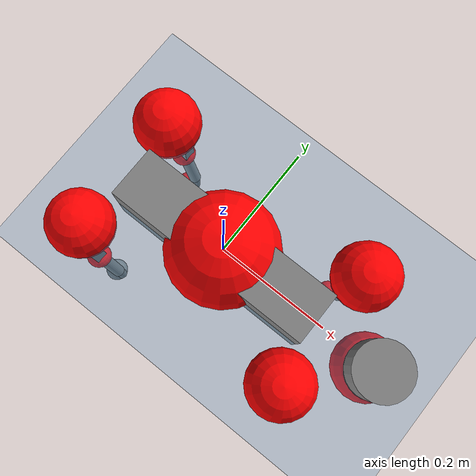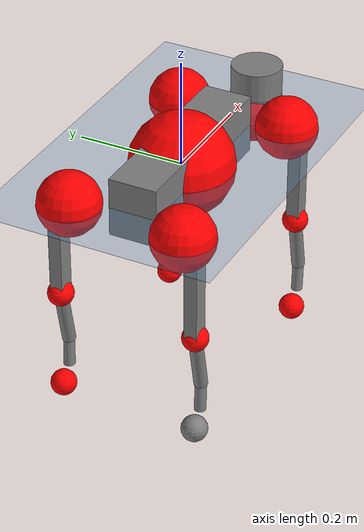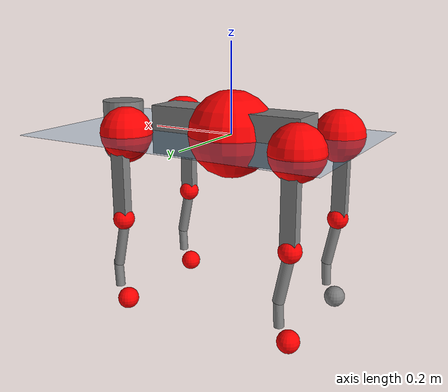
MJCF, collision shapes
<mujoco model="go2">
  <compiler angle="radian" assetdir="assets" balanceinertia="true" inertiafromgeom="false"/>

  <option timestep="0.005" density="1.2" viscosity="2e-05"/>

  <size nkey="1"/>

  <visual>
    <quality shadowsize="8192"/>
    <map shadowclip="0.5"/>
  </visual>

  <default>
    <default class="/">
      <geom contype="0" conaffinity="0" group="1" solref="-1000 -80"/>
      <site size="0.01 0.005 0.005" group="5"/>
      <general forcelimited="true" biastype="affine" gainprm="20" biasprm="0 -20 -0.5"/>
      <default class="go2">
        <joint armature="0.01" damping="0.01" frictionloss="0.2"/>
        <geom condim="1" margin="0.001"/>
        <default class="visual">
          <geom type="mesh" group="2"/>
        </default>
        <default class="collision">
          <geom group="3"/>
          <default class="foot">
            <geom size="0.022 0 0" condim="6" priority="1" friction="0.8 0.02 0.01" solimp="0.015 1 0.022"/>
          </default>
        </default>
        <default class="reward_collision_sphere">
          <geom group="5" rgba="1 0 0 1"/>
        </default>
      </default>
    </default>
  </default>

  <asset>
    <texture type="skybox" colorspace="auto" name="//unnamed_texture_0" builtin="gradient" rgb1="0.95 0.95 0.95" rgb2="0.95 0.95 0.95" width="100" height="600"/>
    <texture type="2d" colorspace="auto" name="texplane" builtin="checker" rgb1="0.345 0.575 0.748" rgb2="0.345 0.575 0.748" markrgb="1 1 1" width="512" height="512"/>
    <material name="MatPlane" class="/" texture="texplane" texuniform="true" texrepeat="2 2" specular="0.9"/>
    <material name="metal" class="/" rgba="0.9 0.95 0.95 1"/>
    <material name="black" class="/" rgba="0 0 0 1"/>
    <material name="white" class="/"/>
    <material name="gray" class="/" rgba="0.671705 0.692426 0.77427 1"/>
    <mesh name="base_0" class="/" file="base_0.obj"/>
    <mesh name="base_1" class="/" file="base_1.obj"/>
    <mesh name="base_2" class="/" file="base_2.obj"/>
    <mesh name="base_3" class="/" file="base_3.obj"/>
    <mesh name="base_4" class="/" file="base_4.obj"/>
    <mesh name="hip_0" class="/" file="hip_0.obj"/>
    <mesh name="hip_1" class="/" file="hip_1.obj"/>
    <mesh name="thigh_0" class="/" file="thigh_0.obj"/>
    <mesh name="thigh_1" class="/" file="thigh_1.obj"/>
    <mesh name="thigh_mirror_0" class="/" file="thigh_mirror_0.obj"/>
    <mesh name="thigh_mirror_1" class="/" file="thigh_mirror_1.obj"/>
    <mesh name="calf_0" class="/" file="calf_0.obj"/>
    <mesh name="calf_1" class="/" file="calf_1.obj"/>
    <mesh name="calf_mirror_0" class="/" file="calf_mirror_0.obj"/>
    <mesh name="calf_mirror_1" class="/" file="calf_mirror_1.obj"/>
    <mesh name="foot" class="/" file="foot.obj"/>
  </asset>

  <worldbody>
    <geom name="floor" class="/" size="100 100 0.125" type="plane" group="0" material="MatPlane"/>
    <light name="toplight_shadow" class="/" pos="0 0 5" dir="0.0990148 0.0990148 -0.990148" type="directional" ambient="0.04 0.04 0.04" diffuse="0.55 0.55 0.55" specular="0.12 0.12 0.12"/>
    <light name="toplight_fill" class="/" pos="0 0 5" dir="0.0990148 0.0990148 -0.990148" type="directional" castshadow="false" ambient="0.04 0.04 0.04" diffuse="0.3 0.3 0.3" specular="0.08 0.08 0.08"/>
    <body name="trunk" childclass="go2" pos="-0.000215231 -0.00165048 0.000838023" quat="1 0.000815506 7.19346e-05 -0.000188256">
      <inertial pos="0.0215448 -0.00264045 -0.0029816" quat="0.000213192 0.716383 -0.0021435 0.697704" mass="6.26142" diaginertia="0.134333 0.0669202 0.0157216"/>
      <joint name="//unnamed_joint_0" type="free" armature="0" damping="0" frictionloss="0"/>
      <geom name="//unnamed_geom_1" class="visual" material="black" mesh="base_0"/>
      <geom name="//unnamed_geom_2" class="visual" material="black" mesh="base_1"/>
      <geom name="//unnamed_geom_3" class="visual" material="black" mesh="base_2"/>
      <geom name="//unnamed_geom_4" class="visual" material="white" mesh="base_3"/>
      <geom name="//unnamed_geom_5" class="visual" material="gray" mesh="base_4"/>
      <geom name="trunk_1" class="collision" size="0.182477 0.0453525 0.0552961" type="box"/>
      <geom name="trunk_2" class="collision" size="0.0485054 0.0436548" pos="0.302354 0 0.00916466" type="cylinder"/>
      <geom name="trunk_3" class="collision" size="0.0455951" pos="0.310841 0 -0.054988"/>
      <geom name="//unnamed_geom_9" class="reward_collision_sphere" size="0.0970108"/>
      <geom name="//unnamed_geom_10" class="reward_collision_sphere" size="0.0582065" pos="0.297049 0 -0.041241"/>
      <site name="imu" pos="-0.0264388 0.00218762 0.0410175" size="0.00970108"/>
      <camera name="track" pos="0 -1.86593 0" quat="0.707107 0.707107 0 0" mode="trackcom"/>
      <camera name="ego_camera" pos="0.330998 0 0.041241" quat="-0.5 -0.5 0.5 0.5"/>
      <body name="FL_hip" pos="0.205316 0.044527 0.000357909" quat="1 2.66989e-05 5.06722e-05 4.96927e-05">
        <inertial pos="-0.00543598 -0.000325289 0.000172372" quat="0.497929 0.488751 0.511617 0.501436" mass="0.614526" diaginertia="0.00116737 0.000414649 0.000304243"/>
        <joint name="FL_hip_joint" pos="0 0 0" axis="0.999971 0.00742702 0.00148353" stiffness="0.0156796" range="-1.06208 1.06808" armature="0.0093382" damping="0.00409685" frictionloss="0.195415"/>
        <geom name="//unnamed_geom_11" class="visual" material="metal" mesh="hip_0"/>
        <geom name="//unnamed_geom_12" class="visual" material="gray" mesh="hip_1"/>
        <geom name="//unnamed_geom_13" class="collision" size="0.044625 0.0194022" pos="0 0.0746373 0" quat="0.707107 0.707107 0 0" type="cylinder"/>
        <geom name="//unnamed_geom_14" class="reward_collision_sphere" size="0.0582065" pos="0 0.0653076 0"/>
        <body name="FL_thigh" pos="0.00118654 0.0895096 9.208e-05" quat="0.999999 -0.0013625 8.97708e-05 -0.000196535">
          <inertial pos="-0.0047729 -0.0180703 -0.0296071" quat="0.830086 0.0853911 -0.0198143 0.550703" mass="1.05922" diaginertia="0.00772107 0.00426147 0.000568406"/>
          <joint name="FL_thigh_joint" pos="0 0 0" axis="-0.0087815 0.999905 0.0106697" stiffness="0.00463158" range="-1.60297 3.43726" armature="0.0109772" damping="0.00226923" frictionloss="0.185074"/>
          <geom name="//unnamed_geom_15" class="visual" material="metal" mesh="thigh_0"/>
          <geom name="//unnamed_geom_16" class="visual" material="gray" mesh="thigh_1"/>
          <geom name="//unnamed_geom_17" class="collision" size="0.103316 0.0118838 0.0164918" pos="0 0 -0.0976037" quat="0.707107 0 0.707107 0" type="box"/>
          <body name="FL_calf" pos="-0.00125828 -0.00181193 -0.194346" quat="1 0.000105616 -3.92836e-05 -0.000263545">
            <inertial pos="0.00411702 -0.00177032 -0.13135" quat="0.712531 0.00140183 -0.00514747 0.701621" mass="0.214704" diaginertia="0.0019725 0.00105058 3.38066e-05"/>
            <joint name="FL_calf_joint" pos="0 0 0" axis="-0.00969027 0.999939 0.00538825" stiffness="0.0106137" range="-2.67159 -0.790031" armature="0.00925247" damping="0" frictionloss="0.187045"/>
            <geom name="//unnamed_geom_18" class="visual" material="gray" mesh="calf_0"/>
            <geom name="//unnamed_geom_19" class="visual" material="black" mesh="calf_1"/>
            <geom name="FL_calf0" class="collision" size="0.0116413 0.0582065" pos="0.00848712 0 -0.054988" quat="0.994493 0 -0.104807 0" type="cylinder"/>
            <geom name="//unnamed_geom_21" class="collision" size="0.0106712 0.0315285" pos="0.0212178 0 -0.135637" quat="0.999688 0 0.0249974 0" type="cylinder"/>
            <geom name="//unnamed_geom_22" class="visual" pos="0 0 -0.195207" quat="1 0 0 0" material="black" mesh="foot"/>
            <geom name="FL_foot" class="foot" size="0.0175243" pos="-0.00212178 0 -0.195207"/>
            <geom name="//unnamed_geom_24" class="reward_collision_sphere" size="0.0242527"/>
            <geom name="//unnamed_geom_25" class="reward_collision_sphere" size="0.0242527" pos="-0.00212178 0 -0.195207"/>
            <site name="FL_foot" class="foot" pos="-0.00212178 0 -0.195207" size="0.00970108"/>
          </body>
        </body>
      </body>
      <body name="FR_hip" pos="0.202807 -0.0434348 -0.00149772" quat="1 7.5647e-05 -0.000461575 -9.69102e-05">
        <inertial pos="-0.00530717 -0.00216675 0.000566724" quat="0.506436 0.495052 0.500459 0.497983" mass="0.624663" diaginertia="0.00116486 0.000420967 0.000309239"/>
        <joint name="FR_hip_joint" pos="0 0 0" axis="0.999989 -0.00466517 -0.000499852" range="-1.05918 1.10085" armature="0.00962152" damping="0.00742406" frictionloss="0.184825"/>
        <geom name="//unnamed_geom_26" class="visual" pos="0 1.4374e-10 6.16532e-09" quat="4.63268e-05 1 0 0" material="metal" mesh="hip_0"/>
        <geom name="//unnamed_geom_27" class="visual" pos="0 2.3302e-10 -1.52492e-08" quat="4.63268e-05 1 0 0" material="gray" mesh="hip_1"/>
        <geom name="//unnamed_geom_28" class="collision" size="0.044625 0.0194022" pos="0 -0.0746373 0" quat="0.707107 0.707107 0 0" type="cylinder"/>
        <geom name="//unnamed_geom_29" class="reward_collision_sphere" size="0.0582065" pos="0 -0.0653076 0"/>
        <body name="FR_thigh" pos="0.00088712 -0.0886988 0.000200159" quat="1 -8.25208e-07 -0.00016386 0.000351157">
          <inertial pos="-0.00309061 0.0195177 -0.0272156" quat="0.552292 -0.0204359 0.0820537 0.829351" mass="1.03879" diaginertia="0.0078248 0.00412849 0.00056801"/>
          <joint name="FR_thigh_joint" pos="0 0 0" axis="0.002923 -0.999978 0.00599461" stiffness="0.0116417" range="-3.50224 1.55557" armature="0.00851303" damping="0.0257774" frictionloss="0.181285"/>
          <geom name="//unnamed_geom_30" class="visual" material="metal" mesh="thigh_mirror_0"/>
          <geom name="//unnamed_geom_31" class="visual" material="gray" mesh="thigh_mirror_1"/>
          <geom name="//unnamed_geom_32" class="collision" size="0.103316 0.0118838 0.0164918" pos="0 0 -0.0976037" quat="0.707107 0 0.707107 0" type="box"/>
          <body name="FR_calf" pos="-9.5544e-05 0.000284818 -0.191833" quat="1 0.000111007 0.000387086 0.000353381">
            <inertial pos="0.00531475 0.00234795 -0.130244" quat="0.703682 -0.00437379 0.00200643 0.710498" mass="0.227407" diaginertia="0.00207781 0.00109401 3.49505e-05"/>
            <joint name="FR_calf_joint" pos="0 0 0" axis="0.00858725 -0.999959 0.00304186" range="0.818948 2.70267" armature="0.0100804" damping="0" frictionloss="0.198605"/>
            <geom name="//unnamed_geom_33" class="visual" material="gray" mesh="calf_mirror_0"/>
            <geom name="//unnamed_geom_34" class="visual" material="black" mesh="calf_mirror_1"/>
            <geom name="FR_calf0" class="collision" size="0.0126114 0.0582065" pos="0.0106089 0 -0.054988" quat="0.995004 0 -0.0998334 0" type="cylinder"/>
            <geom name="//unnamed_geom_36" class="collision" size="0.0106712 0.0315285" pos="0.0212178 0 -0.135637" quat="0.999688 0 0.0249974 0" type="cylinder"/>
            <geom name="//unnamed_geom_37" class="visual" pos="0 0 -0.195207" quat="1 0 0 0" material="black" mesh="foot"/>
            <geom name="FR_foot" class="foot" size="0.0200192" pos="-0.00212178 0 -0.195207"/>
            <geom name="//unnamed_geom_39" class="reward_collision_sphere" size="0.0242527"/>
            <geom name="//unnamed_geom_40" class="reward_collision_sphere" size="0.0242527" pos="-0.00212178 0 -0.195207"/>
            <site name="FR_foot" class="foot" pos="-0.00212178 0 -0.195207" size="0.00970108"/>
          </body>
        </body>
      </body>
      <body name="RL_hip" pos="-0.205985 0.0438393 0.00194252" quat="1 1.84419e-05 -6.685e-05 -2.11387e-06">
        <inertial pos="0.00473266 0.0030673 0.00157997" quat="0.5076 0.500729 0.492814 0.498745" mass="0.601159" diaginertia="0.00120792 0.000420516 0.000315388"/>
        <joint name="RL_hip_joint" pos="0 0 0" axis="-0.999898 0.0101984 0.00999332" stiffness="0.0126488" range="-0.997566 1.05412" armature="0.0102187" damping="0.0124967" frictionloss="0.215386"/>
        <geom name="//unnamed_geom_41" class="visual" pos="-1.25816e-09 0 -2.46629e-07" quat="4.63268e-05 0 1 0" material="metal" mesh="hip_0"/>
        <geom name="//unnamed_geom_42" class="visual" pos="-2.03963e-09 0 -2.18725e-07" quat="4.63268e-05 0 1 0" material="gray" mesh="hip_1"/>
        <geom name="//unnamed_geom_43" class="collision" size="0.044625 0.0194022" pos="0 0.0746373 0" quat="0.707107 0.707107 0 0" type="cylinder"/>
        <geom name="//unnamed_geom_44" class="reward_collision_sphere" size="0.0582065" pos="0 0.0653076 0"/>
        <body name="RL_thigh" pos="-0.000141606 0.0887235 0.00185555" quat="0.999999 -0.000802111 -0.00090367 -0.00067173">
          <inertial pos="-0.00411784 -0.0180945 -0.0303185" quat="0.823717 0.083124 -0.0221803 0.560437" mass="1.0142" diaginertia="0.00789514 0.00417125 0.000585606"/>
          <joint name="RL_thigh_joint" pos="0 0 0" axis="0.0017458 0.999943 -0.0105009" stiffness="0.00535167" range="-0.512971 4.52908" armature="0.0104785" damping="0.0211276" frictionloss="0.185175"/>
          <geom name="//unnamed_geom_45" class="visual" material="metal" mesh="thigh_0"/>
          <geom name="//unnamed_geom_46" class="visual" material="gray" mesh="thigh_1"/>
          <geom name="//unnamed_geom_47" class="collision" size="0.103316 0.0118838 0.0164918" pos="0 0 -0.0976037" quat="0.707107 0 0.707107 0" type="box"/>
          <body name="RL_calf" pos="-0.00145875 -0.000463432 -0.193228" quat="1 -0.000372147 5.4216e-05 0.000259188">
            <inertial pos="0.00721245 0.00201553 -0.129271" quat="0.71026 0.0025481 -0.00575592 0.703911" mass="0.220383" diaginertia="0.00193362 0.000997688 3.30396e-05"/>
            <joint name="RL_calf_joint" pos="0 0 0" axis="-0.0164458 0.999835 0.00771046" stiffness="0.012024" range="-2.66831 -0.836923" armature="0.0109939" damping="0.0064706" frictionloss="0.179877"/>
            <geom name="//unnamed_geom_48" class="visual" material="gray" mesh="calf_0"/>
            <geom name="//unnamed_geom_49" class="visual" material="black" mesh="calf_1"/>
            <geom name="RL_calf0" class="collision" size="0.0126114 0.0582065" pos="0.0106089 0 -0.054988" quat="0.995004 0 -0.0998334 0" type="cylinder"/>
            <geom name="//unnamed_geom_51" class="collision" size="0.0106712 0.0315285" pos="0.0212178 0 -0.135637" quat="0.999688 0 0.0249974 0" type="cylinder"/>
            <geom name="//unnamed_geom_52" class="visual" pos="0 0 -0.195207" quat="1 0 0 0" material="black" mesh="foot"/>
            <geom name="RL_foot" class="foot" size="0.0187609" pos="-0.00212178 0 -0.195207"/>
            <geom name="//unnamed_geom_54" class="reward_collision_sphere" size="0.0242527"/>
            <geom name="//unnamed_geom_55" class="reward_collision_sphere" size="0.0242527" pos="-0.00212178 0 -0.195207"/>
            <site name="RL_foot" class="foot" pos="-0.00212178 0 -0.195207" size="0.00970108"/>
          </body>
        </body>
      </body>
      <body name="RR_hip" pos="-0.207723 -0.044513 -0.00220439" quat="0.999999 -0.000953055 -0.000752592 -0.000333646">
        <inertial pos="0.0059361 -0.000959546 -0.000170214" quat="0.499329 0.497106 0.498159 0.505365" mass="0.61339" diaginertia="0.00117819 0.00041421 0.000318168"/>
        <joint name="RR_hip_joint" pos="0 0 0" axis="-0.999999 -0.000868345 -0.000823039" stiffness="0.00920242" range="-1.02684 1.08041" armature="0.0109995" damping="0.00827895" frictionloss="0.206449"/>
        <geom name="//unnamed_geom_56" class="visual" pos="1.25373e-09 1.4374e-10 -2.52794e-07" quat="2.14617e-09 4.63268e-05 4.63268e-05 -1" material="metal" mesh="hip_0"/>
        <geom name="//unnamed_geom_57" class="visual" pos="2.05059e-09 2.3302e-10 -2.03475e-07" quat="2.14617e-09 4.63268e-05 4.63268e-05 -1" material="gray" mesh="hip_1"/>
        <geom name="//unnamed_geom_58" class="collision" size="0.044625 0.0194022" pos="0 -0.0746373 0" quat="0.707107 0.707107 0 0" type="cylinder"/>
        <geom name="//unnamed_geom_59" class="reward_collision_sphere" size="0.0582065" pos="0 -0.0653076 0"/>
        <body name="RR_thigh" pos="-0.00114629 -0.0874717 -0.00148574" quat="1 0.000168885 0.000211606 0.000122614">
          <inertial pos="-0.00406466 0.0188015 -0.0306029" quat="0.55334 -0.0172012 0.0834538 0.828586" mass="1.02618" diaginertia="0.00791397 0.00412096 0.000549544"/>
          <joint name="RR_thigh_joint" pos="0 0 0" axis="-0.00133964 -0.999988 -0.00480777" stiffness="0.00920983" range="-4.52905 0.57696" armature="0.00840488" damping="0.0239421" frictionloss="0.191372"/>
          <geom name="//unnamed_geom_60" class="visual" material="metal" mesh="thigh_mirror_0"/>
          <geom name="//unnamed_geom_61" class="visual" material="gray" mesh="thigh_mirror_1"/>
          <geom name="//unnamed_geom_62" class="collision" size="0.103316 0.0118838 0.0164918" pos="0 0 -0.0976037" quat="0.707107 0 0.707107 0" type="box"/>
          <body name="RR_calf" pos="0.00284695 -0.000205651 -0.196425" quat="1 0.000154972 -4.54466e-05 0.000120348">
            <inertial pos="0.00570208 0.000285968 -0.129454" quat="0.703594 -0.0043506 0.00259458 0.710584" mass="0.225333" diaginertia="0.00198279 0.00104198 3.44576e-05"/>
            <joint name="RR_calf_joint" pos="0 0 0" axis="-0.00104915 -0.999986 -0.00518158" range="0.888923 2.7336" armature="0.00969029" damping="0.0153075" frictionloss="0.202257"/>
            <geom name="//unnamed_geom_63" class="visual" material="gray" mesh="calf_mirror_0"/>
            <geom name="//unnamed_geom_64" class="visual" material="black" mesh="calf_mirror_1"/>
            <geom name="RR_calf0" class="collision" size="0.0126114 0.0582065" pos="0.0106089 0 -0.054988" quat="0.995004 0 -0.0998334 0" type="cylinder"/>
            <geom name="//unnamed_geom_66" class="collision" size="0.0106712 0.0315285" pos="0.0212178 0 -0.135637" quat="0.999688 0 0.0249974 0" type="cylinder"/>
            <geom name="//unnamed_geom_67" class="visual" pos="0 0 -0.195207" quat="1 0 0 0" material="black" mesh="foot"/>
            <geom name="RR_foot" class="foot" size="0.0244561" pos="-0.00212178 0 -0.195207"/>
            <geom name="//unnamed_geom_69" class="reward_collision_sphere" size="0.0242527"/>
            <geom name="//unnamed_geom_70" class="reward_collision_sphere" size="0.0242527" pos="-0.00212178 0 -0.195207"/>
            <site name="RR_foot" class="foot" pos="-0.00212178 0 -0.195207" size="0.00970108"/>
          </body>
        </body>
      </body>
    </body>
  </worldbody>

  <contact>
    <pair class="/" geom1="floor" geom2="FL_foot" name="//unnamed_contact_0"/>
    <pair class="/" geom1="floor" geom2="FR_foot" name="//unnamed_contact_1"/>
    <pair class="/" geom1="floor" geom2="RL_foot" name="//unnamed_contact_2"/>
    <pair class="/" geom1="floor" geom2="RR_foot" name="//unnamed_contact_3"/>
  </contact>

  <actuator>
    <general name="FL_hip" class="/" joint="FL_hip_joint" forcerange="-23.175 23.175" gainprm="19.55" biasprm="0 -19.55 -0.491024"/>
    <general name="FL_thigh" class="/" joint="FL_thigh_joint" forcerange="-23.3523 23.3523" gainprm="19.55" biasprm="0 -19.55 -0.491024"/>
    <general name="FL_calf" class="/" joint="FL_calf_joint" forcerange="-44.8416 44.8416" gainprm="19.55" biasprm="0 -19.55 -0.491024"/>
    <general name="FR_hip" class="/" joint="FR_hip_joint" forcerange="-22.4583 22.4583" gainprm="19.55" biasprm="0 -19.55 -0.491024"/>
    <general name="FR_thigh" class="/" joint="FR_thigh_joint" forcerange="-22.453 22.453" gainprm="19.55" biasprm="0 -19.55 -0.491024"/>
    <general name="FR_calf" class="/" joint="FR_calf_joint" forcerange="-40.4006 40.4006" gainprm="19.55" biasprm="0 -19.55 -0.491024"/>
    <general name="RL_hip" class="/" joint="RL_hip_joint" forcerange="-23.5922 23.5922" gainprm="19.55" biasprm="0 -19.55 -0.491024"/>
    <general name="RL_thigh" class="/" joint="RL_thigh_joint" forcerange="-22.6386 22.6386" gainprm="19.55" biasprm="0 -19.55 -0.491024"/>
    <general name="RL_calf" class="/" joint="RL_calf_joint" forcerange="-42.5478 42.5478" gainprm="19.55" biasprm="0 -19.55 -0.491024"/>
    <general name="RR_hip" class="/" joint="RR_hip_joint" forcerange="-22.6436 22.6436" gainprm="19.55" biasprm="0 -19.55 -0.491024"/>
    <general name="RR_thigh" class="/" joint="RR_thigh_joint" forcerange="-22.5901 22.5901" gainprm="19.55" biasprm="0 -19.55 -0.491024"/>
    <general name="RR_calf" class="/" joint="RR_calf_joint" forcerange="-48.5452 48.5452" gainprm="19.55" biasprm="0 -19.55 -0.491024"/>
  </actuator>

  <sensor>
    <gyro site="imu" name="imu_angular_velocity"/>
    <velocimeter site="imu" name="imu_linear_velocity"/>
    <framelinvel objtype="site" objname="FL_foot" name="FL_foot_global_linear_velocity"/>
    <framelinvel objtype="site" objname="FR_foot" name="FR_foot_global_linear_velocity"/>
    <framelinvel objtype="site" objname="RL_foot" name="RL_foot_global_linear_velocity"/>
    <framelinvel objtype="site" objname="RR_foot" name="RR_foot_global_linear_velocity"/>
  </sensor>

  <keyframe>
    <key name="home" qpos="0 0 0.325 1 0 0 0 0.1 0.8 -1.5 -0.1 -0.8 1.5 -0.1 0.8 -1.5 0.1 -0.8 1.5"/>
  </keyframe>
</mujoco>
